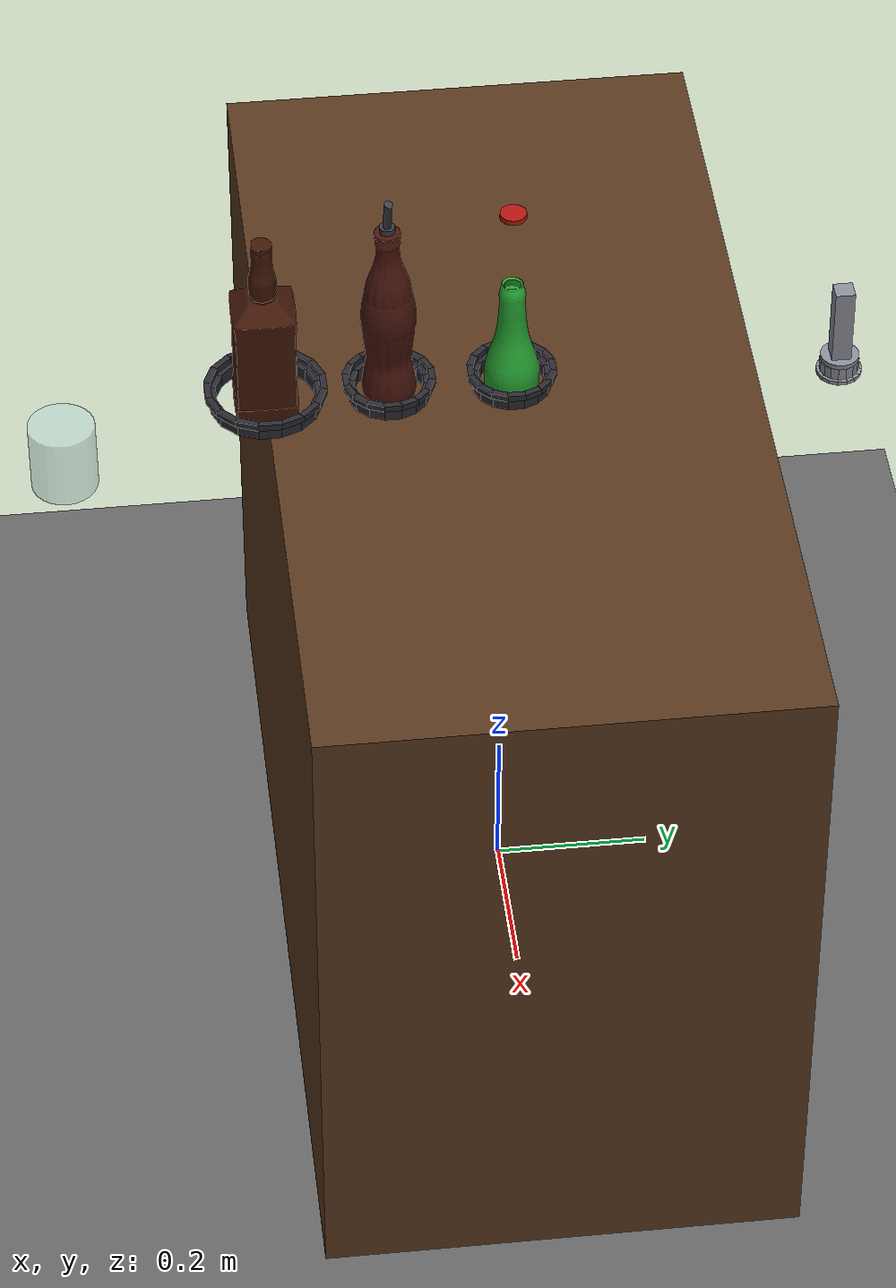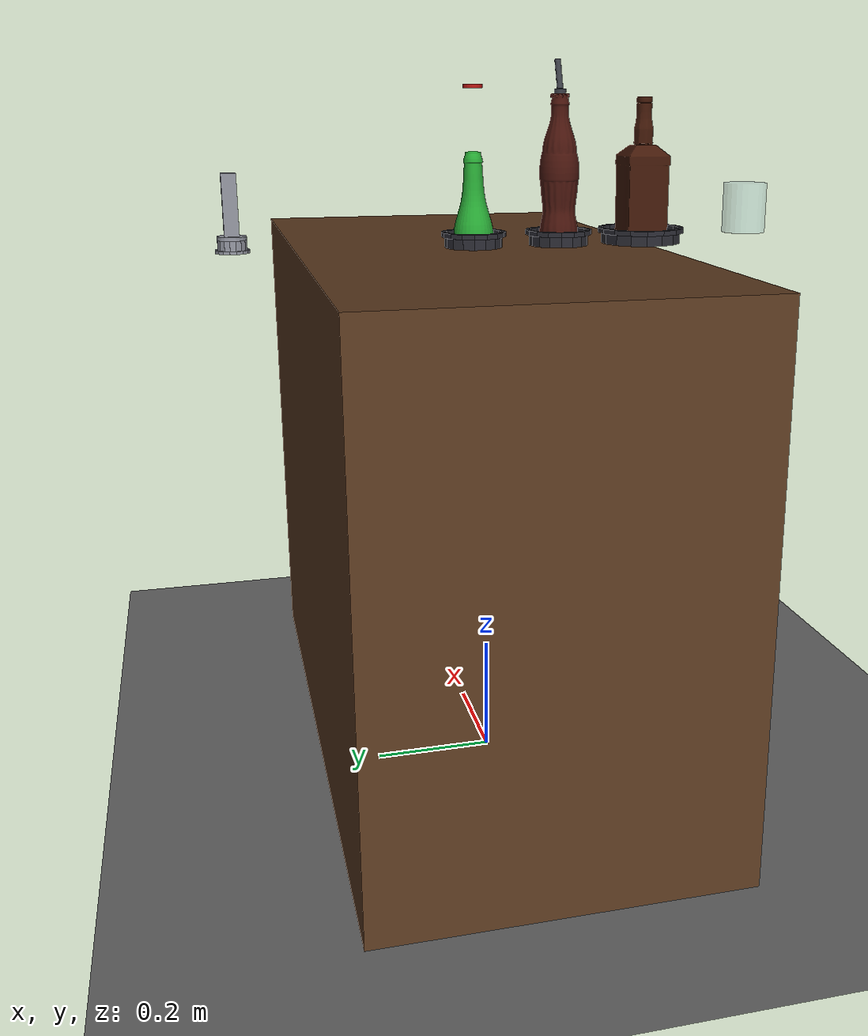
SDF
<?xml version="1.0" ?>
<sdf version="1.9">
  <world name="bar_world">
    <physics name="1ms" type="ignored">
      <max_step_size>0.001</max_step_size>
      <real_time_factor>1.0</real_time_factor>
      <dart>
        <collision_detector>bullet</collision_detector>
      </dart>
    </physics>

    <plugin filename="gz-sim-physics-system" name="gz::sim::systems::Physics"/>
    <plugin filename="gz-sim-user-commands-system" name="gz::sim::systems::UserCommands"/>
    <plugin filename="gz-sim-scene-broadcaster-system" name="gz::sim::systems::SceneBroadcaster"/>
    <plugin filename="gz-sim-sensors-system" name="gz::sim::systems::Sensors">
      <render_engine>ogre2</render_engine>
    </plugin>
    <plugin filename="gz-sim-contact-system" name="gz::sim::systems::Contact"/>

    <light type="directional" name="sun">
      <cast_shadows>true</cast_shadows>
      <pose>0 0 10 0 0 0</pose>
      <diffuse>0.8 0.8 0.8 1</diffuse>
      <specular>0.2 0.2 0.2 1</specular>
      <attenuation>
        <range>1000</range>
        <constant>0.9</constant>
        <linear>0.01</linear>
        <quadratic>0.001</quadratic>
      </attenuation>
      <direction>-0.5 0.1 -0.9</direction>
    </light>

    <model name="ground_plane">
      <static>true</static>
      <link name="link">
        <collision name="collision">
          <geometry>
            <plane>
              <normal>0 0 1</normal>
              <size>100 100</size>
            </plane>
          </geometry>
        </collision>
        <visual name="visual">
          <geometry>
            <plane>
              <normal>0 0 1</normal>
              <size>100 100</size>
            </plane>
          </geometry>
          <material>
            <ambient>0.3 0.3 0.3 1</ambient>
            <diffuse>0.4 0.4 0.4 1</diffuse>
          </material>
        </visual>
      </link>
    </model>

    <include>
      <uri>model://bar_counter</uri>
      <name>bar_counter</name>
      <pose>0.08 0 0.9 0 0 0</pose>
    </include>

    <!-- Label plugins tag objects for the segmentation cameras; the numbers are
         scripts/vlm_labels.py LABEL_IDS (test_vlm_labels.py checks they match). -->
    <include>
      <uri>model://jack_daniels_bottle</uri>
      <name>jack_daniels_bottle</name>
      <plugin filename="gz-sim-label-system" name="gz::sim::systems::Label">
        <label>1</label>
      </plugin>
      <pose>0.08 -0.30 0.9 0 0 0</pose>
    </include>

    <include>
      <uri>model://cola_bottle</uri>
      <name>cola_bottle</name>
      <plugin filename="gz-sim-label-system" name="gz::sim::systems::Label">
        <label>2</label>
      </plugin>
      <pose>0.08 -0.15 0.9 0 0 0</pose>
    </include>

    <include>
      <uri>model://whiskey_stand</uri>
      <name>whiskey_stand</name>
      <pose>0.08 -0.30 0.9 0 0 0</pose>
    </include>

    <include>
      <uri>model://cola_stand</uri>
      <name>cola_stand</name>
      <pose>0.08 -0.15 0.9 0 0 0</pose>
    </include>

    <include>
      <uri>model://beer_stand</uri>
      <name>beer_stand</name>
      <pose>0.08 0.0 0.9 0 0 0</pose>
    </include>

    <include>
      <uri>model://beer_bottle</uri>
      <name>beer_bottle</name>
      <plugin filename="gz-sim-label-system" name="gz::sim::systems::Label">
        <label>3</label>
      </plugin>
      <pose>0.08 0.0 0.9 0 0 0</pose>
    </include>

    <include>
      <uri>model://beer_cap</uri>
      <name>beer_cap</name>
      <pose>0.08 0.0 1.1581 0 0 0</pose>
    </include>

    <!-- ============== each arm's own working station ============== -->

    <include>
      <uri>model://serving_glass</uri>
      <name>serving_glass</name>
      <plugin filename="gz-sim-label-system" name="gz::sim::systems::Label">
        <label>10</label>
      </plugin>
      <pose>0.20 -0.55 0.9 0 0 0</pose>
    </include>

    <include>
      <uri>model://opener_holster</uri>
      <name>opener_holster</name>
      <pose>0.10 0.40 0.9 0 0 0</pose>
    </include>

    <include>
      <uri>model://bottle_opener</uri>
      <name>bottle_opener</name>
      <pose>0.10 0.40 0.9 0 0 0</pose>
    </include>

    <!-- Simulated OAK-D depth on a stand; its pose is restated in bartender_api/config/stand_camera.yaml. -->
    <model name="oak_d_stand">
      <static>true</static>
      <pose>0.75 0 1.35 0 0.493051 3.141593</pose>
      <link name="link">
        <sensor name="stand_depth" type="depth_camera">
          <always_on>true</always_on>
          <update_rate>15</update_rate>
          <topic>/bartender/stand_camera/depth</topic>
          <ignition_frame_id>stand_camera_optical_frame</ignition_frame_id>
          <camera>
            <camera_info_topic>/bartender/stand_camera/camera_info</camera_info_topic>
            <horizontal_fov>1.2566</horizontal_fov>
            <image>
              <width>640</width>
              <height>400</height>
              <format>R_FLOAT32</format>
            </image>
            <clip>
              <near>0.2</near>
              <far>5.0</far>
            </clip>
            <noise>
              <type>gaussian</type>
              <mean>0.0</mean>
              <stddev>0.004</stddev>
            </noise>
          </camera>
        </sensor>
        <!-- Colour twin of stand_depth: same pose, FOV and size, so pixels line up (OAK-D aligns RGB to depth). -->
        <sensor name="stand_rgb" type="camera">
          <always_on>true</always_on>
          <update_rate>15</update_rate>
          <topic>/bartender/stand_camera/rgb</topic>
          <ignition_frame_id>stand_camera_optical_frame</ignition_frame_id>
          <camera>
            <horizontal_fov>1.2566</horizontal_fov>
            <image>
              <width>640</width>
              <height>400</height>
              <format>R8G8B8</format>
            </image>
            <clip>
              <near>0.2</near>
              <far>5.0</far>
            </clip>
          </camera>
        </sensor>
        <sensor name="bartender_stand_camera_segmentation" type="segmentation">
          <always_on>true</always_on>
          <update_rate>15</update_rate>
          <topic>/bartender/stand_camera/segmentation</topic>
          <camera>
            <segmentation_type>semantic</segmentation_type>
            <horizontal_fov>1.2566</horizontal_fov>
            <image>
              <width>640</width>
              <height>400</height>
            </image>
            <clip>
              <near>0.2</near>
              <far>5.0</far>
            </clip>
          </camera>
        </sensor>
      </link>
    </model>

    <model name="overhead_camera">
      <static>true</static>
      <pose>-0.05 -0.30 2.0 0 1.5708 0</pose>
      <link name="link">
        <sensor name="overhead_rgb" type="camera">
          <always_on>true</always_on>
          <update_rate>15</update_rate>
          <topic>/bartender/overhead_camera/image_raw</topic>
          <camera>
            <horizontal_fov>1.2566</horizontal_fov>
            <image>
              <width>320</width>
              <height>240</height>
              <format>R8G8B8</format>
            </image>
            <clip>
              <near>0.2</near>
              <far>3.0</far>
            </clip>
          </camera>
        </sensor>
        <sensor name="bartender_overhead_camera_segmentation" type="segmentation">
          <always_on>true</always_on>
          <update_rate>15</update_rate>
          <topic>/bartender/overhead_camera/segmentation</topic>
          <camera>
            <segmentation_type>semantic</segmentation_type>
            <horizontal_fov>1.2566</horizontal_fov>
            <image>
              <width>320</width>
              <height>240</height>
            </image>
            <clip>
              <near>0.2</near>
              <far>3.0</far>
            </clip>
          </camera>
        </sensor>
      </link>
    </model>

  </world>
</sdf>

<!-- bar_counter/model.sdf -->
<sdf version="1.9">
  <model name="bar_counter">
    <static>true</static>
    <link name="counter_link">
      <visual name="counter_visual">
        <pose>0 0 -0.45 0 0 0</pose>
        <geometry>
          <box>
            <size>1.2 0.6 0.9</size>
          </box>
        </geometry>
        <material>
          <ambient>0.25 0.15 0.08 1</ambient>
          <diffuse>0.35 0.22 0.12 1</diffuse>
          <specular>0.2 0.2 0.2 1</specular>
        </material>
      </visual>

      <collision name="counter_collision">
        <pose>0 0 -0.45 0 0 0</pose>
        <geometry>
          <box>
            <size>1.2 0.6 0.9</size>
          </box>
        </geometry>
        <surface>
          <friction>
            <ode>
              <mu>0.8</mu>
              <mu2>0.8</mu2>
            </ode>
          </friction>
        </surface>
      </collision>
    </link>
  </model>
</sdf>

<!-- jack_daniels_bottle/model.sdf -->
<sdf version="1.9">
  <model name="jack_daniels_bottle">
    <!-- Link origin sits at the center of the bottle's base, so placing the
         model's pose z at table height puts the bottle exactly on the surface. -->
    <link name="bottle_link">
      <inertial>
        <pose>0 0 0.1225 0 0 0</pose>
        <mass>1.0</mass>
        <inertia>
          <ixx>0.005375</ixx>
          <iyy>0.005375</iyy>
          <izz>0.000745</izz>
          <ixy>0</ixy>
          <ixz>0</ixz>
          <iyz>0</iyz>
        </inertia>
      </inertial>

      <visual name="bottle_visual">
        <!-- source mesh is Y-up (Blender OBJ export); rotate +90 deg about X
             so the bottle's height axis becomes Z-up as SDF expects. -->
        <pose>0 0 0 1.570796 0 0</pose>
        <geometry>
          <mesh>
            <uri>meshes/bottle.obj</uri>
          </mesh>
        </geometry>
        <material>
          <ambient>0.05 0.02 0.01 1</ambient>
          <diffuse>0.25 0.09 0.03 1</diffuse>
          <specular>0.4 0.4 0.4 1</specular>
          <emissive>0 0 0 1</emissive>
        </material>
      </visual>

      <!-- Cheap cylinder collision instead of the 34k-face visual mesh, for
           stable, fast grasp physics. -->
      <collision name="bottle_collision">
        <pose>0 0 0.1225 0 0 0</pose>
        <geometry>
          <cylinder>
            <radius>0.0386</radius>
            <length>0.245</length>
          </cylinder>
        </geometry>
        <surface>
          <friction>
            <ode>
              <mu>0.9</mu>
              <mu2>0.9</mu2>
            </ode>
          </friction>
        </surface>
      </collision>
    </link>
  </model>
</sdf>

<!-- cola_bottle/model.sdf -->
<sdf version="1.9">
  <model name="cola_bottle">
    <!-- Link origin sits at the center of the bottle's base, same convention
         as jack_daniels_bottle, so placing the model's pose z at table height
         puts the bottle exactly on the surface. -->
    <link name="cola_link">
      <inertial>
        <pose>0 0 0.11 0 0 0</pose>
        <mass>1.05</mass>
        <inertia>
          <ixx>0.005765</ixx>
          <iyy>0.005765</iyy>
          <izz>0.000593</izz>
          <ixy>0</ixy>
          <ixz>0</ixz>
          <iyz>0</iyz>
        </inertia>
      </inertial>

      <velocity_decay>
        <linear>0.05</linear>
        <angular>0.30</angular>
      </velocity_decay>

      <visual name="cola_visual">
        <pose>0 0 0 1.570796 0 0</pose>
        <geometry>
          <mesh>
            <uri>meshes/cola_bottle.obj</uri>
            <scale>0.065074 0.065074 0.065074</scale>
          </mesh>
        </geometry>
        <material>
          <ambient>0.06 0.02 0.01 1</ambient>
          <diffuse>0.28 0.08 0.05 1</diffuse>
          <specular>0.5 0.5 0.5 1</specular>
          <emissive>0 0 0 1</emissive>
        </material>
      </visual>

      <collision name="cola_base_collision">
        <pose>0 0 0.0200 0 0 0</pose>
        <geometry>
          <cylinder>
            <radius>0.0333</radius>
            <length>0.040</length>
          </cylinder>
        </geometry>
        <surface>
          <friction>
            <ode>
              <mu>0.9</mu>
              <mu2>0.9</mu2>
            </ode>
          </friction>
        </surface>
      </collision>

      <collision name="cola_waist_collision">
        <pose>0 0 0.0600 0 0 0</pose>
        <geometry>
          <cylinder>
            <radius>0.0298</radius>
            <length>0.040</length>
          </cylinder>
        </geometry>
        <surface>
          <friction>
            <ode>
              <mu>0.9</mu>
              <mu2>0.9</mu2>
            </ode>
          </friction>
        </surface>
      </collision>

      <collision name="cola_bulge_collision">
        <pose>0 0 0.1150 0 0 0</pose>
        <geometry>
          <cylinder>
            <radius>0.0336</radius>
            <length>0.070</length>
          </cylinder>
        </geometry>
        <surface>
          <friction>
            <ode>
              <mu>0.9</mu>
              <mu2>0.9</mu2>
            </ode>
          </friction>
        </surface>
      </collision>

      <collision name="cola_shoulder_collision">
        <pose>0 0 0.1725 0 0 0</pose>
        <geometry>
          <cylinder>
            <radius>0.0250</radius>
            <length>0.045</length>
          </cylinder>
        </geometry>
        <surface>
          <friction>
            <ode>
              <mu>0.9</mu>
              <mu2>0.9</mu2>
            </ode>
          </friction>
        </surface>
      </collision>

      <collision name="cola_neck_collision">
        <pose>0 0 0.2225 0 0 0</pose>
        <geometry>
          <cylinder>
            <radius>0.0165</radius>
            <length>0.055</length>
          </cylinder>
        </geometry>
        <surface>
          <friction>
            <ode>
              <mu>0.9</mu>
              <mu2>0.9</mu2>
            </ode>
          </friction>
        </surface>
      </collision>

      <collision name="cola_collar_collision">
        <pose>0 0 0.2410 0 0 0</pose>
        <geometry>
          <cylinder>
            <radius>0.0210</radius>
            <length>0.008</length>
          </cylinder>
        </geometry>
        <surface>
          <friction>
            <ode>
              <mu>0.9</mu>
              <mu2>0.9</mu2>
            </ode>
          </friction>
        </surface>
      </collision>

      <visual name="cola_pourer_body_visual">
        <pose>0 0 0.2460 0 0 0</pose>
        <geometry><cylinder><radius>0.0095</radius><length>0.022</length></cylinder></geometry>
        <material>
          <ambient>0.05 0.05 0.06 1</ambient>
          <diffuse>0.22 0.23 0.26 1</diffuse>
          <specular>0.7 0.7 0.7 1</specular>
        </material>
      </visual>
      <visual name="cola_pourer_spout_visual">
        <pose>0.0086 0 0.2805 0 0.349066 0</pose>
        <geometry><cylinder><radius>0.005</radius><length>0.050</length></cylinder></geometry>
        <material>
          <ambient>0.05 0.05 0.06 1</ambient>
          <diffuse>0.22 0.23 0.26 1</diffuse>
          <specular>0.7 0.7 0.7 1</specular>
        </material>
      </visual>

      <collision name="cola_pourer_body_collision">
        <pose>0 0 0.2460 0 0 0</pose>
        <geometry><cylinder><radius>0.0095</radius><length>0.022</length></cylinder></geometry>
        <surface><friction><ode><mu>0.9</mu><mu2>0.9</mu2></ode></friction></surface>
      </collision>
      <collision name="cola_pourer_spout_collision">
        <pose>0.0086 0 0.2805 0 0.349066 0</pose>
        <geometry><cylinder><radius>0.005</radius><length>0.050</length></cylinder></geometry>
        <surface><friction><ode><mu>0.9</mu><mu2>0.9</mu2></ode></friction></surface>
      </collision>
    </link>
  </model>
</sdf>

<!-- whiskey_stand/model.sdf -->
<!-- GENERATED by ros2_ws/src/bartender_gazebo/scripts/make_bottle_stands.py.
     Edit that script and re-run it; edits here are overwritten. -->
<sdf version="1.9">
  <model name="whiskey_stand">
    <static>true</static>
    <link name="stand_link">
      <visual name="wall_0">
        <pose>0.064000 0.000000 0.009000 0 0 0.000000</pose>
        <geometry><box><size>0.008000 0.027052 0.018000</size></box></geometry>
        <material>
          <ambient>0.10 0.10 0.12 1</ambient>
          <diffuse>0.16 0.16 0.19 1</diffuse>
          <specular>0.05 0.05 0.05 1</specular>
        </material>
      </visual>
      <collision name="wall_collision_0">
        <pose>0.064000 0.000000 0.009000 0 0 0.000000</pose>
        <geometry><box><size>0.008000 0.027052 0.018000</size></box></geometry>
        <surface>
          <friction><ode>
            <mu>1.2</mu>
            <mu2>1.2</mu2>
          </ode></friction>
        </surface>
      </collision>
      <visual name="wall_1">
        <pose>0.059128 0.024492 0.009000 0 0 0.392699</pose>
        <geometry><box><size>0.008000 0.027052 0.018000</size></box></geometry>
        <material>
          <ambient>0.10 0.10 0.12 1</ambient>
          <diffuse>0.16 0.16 0.19 1</diffuse>
          <specular>0.05 0.05 0.05 1</specular>
        </material>
      </visual>
      <collision name="wall_collision_1">
        <pose>0.059128 0.024492 0.009000 0 0 0.392699</pose>
        <geometry><box><size>0.008000 0.027052 0.018000</size></box></geometry>
        <surface>
          <friction><ode>
            <mu>1.2</mu>
            <mu2>1.2</mu2>
          </ode></friction>
        </surface>
      </collision>
      <visual name="wall_2">
        <pose>0.045255 0.045255 0.009000 0 0 0.785398</pose>
        <geometry><box><size>0.008000 0.027052 0.018000</size></box></geometry>
        <material>
          <ambient>0.10 0.10 0.12 1</ambient>
          <diffuse>0.16 0.16 0.19 1</diffuse>
          <specular>0.05 0.05 0.05 1</specular>
        </material>
      </visual>
      <collision name="wall_collision_2">
        <pose>0.045255 0.045255 0.009000 0 0 0.785398</pose>
        <geometry><box><size>0.008000 0.027052 0.018000</size></box></geometry>
        <surface>
          <friction><ode>
            <mu>1.2</mu>
            <mu2>1.2</mu2>
          </ode></friction>
        </surface>
      </collision>
      <visual name="wall_3">
        <pose>0.024492 0.059128 0.009000 0 0 1.178097</pose>
        <geometry><box><size>0.008000 0.027052 0.018000</size></box></geometry>
        <material>
          <ambient>0.10 0.10 0.12 1</ambient>
          <diffuse>0.16 0.16 0.19 1</diffuse>
          <specular>0.05 0.05 0.05 1</specular>
        </material>
      </visual>
      <collision name="wall_collision_3">
        <pose>0.024492 0.059128 0.009000 0 0 1.178097</pose>
        <geometry><box><size>0.008000 0.027052 0.018000</size></box></geometry>
        <surface>
          <friction><ode>
            <mu>1.2</mu>
            <mu2>1.2</mu2>
          </ode></friction>
        </surface>
      </collision>
      <visual name="wall_4">
        <pose>0.000000 0.064000 0.009000 0 0 1.570796</pose>
        <geometry><box><size>0.008000 0.027052 0.018000</size></box></geometry>
        <material>
          <ambient>0.10 0.10 0.12 1</ambient>
          <diffuse>0.16 0.16 0.19 1</diffuse>
          <specular>0.05 0.05 0.05 1</specular>
        </material>
      </visual>
      <collision name="wall_collision_4">
        <pose>0.000000 0.064000 0.009000 0 0 1.570796</pose>
        <geometry><box><size>0.008000 0.027052 0.018000</size></box></geometry>
        <surface>
          <friction><ode>
            <mu>1.2</mu>
            <mu2>1.2</mu2>
          </ode></friction>
        </surface>
      </collision>
      <visual name="wall_5">
        <pose>-0.024492 0.059128 0.009000 0 0 1.963495</pose>
        <geometry><box><size>0.008000 0.027052 0.018000</size></box></geometry>
        <material>
          <ambient>0.10 0.10 0.12 1</ambient>
          <diffuse>0.16 0.16 0.19 1</diffuse>
          <specular>0.05 0.05 0.05 1</specular>
        </material>
      </visual>
      <collision name="wall_collision_5">
        <pose>-0.024492 0.059128 0.009000 0 0 1.963495</pose>
        <geometry><box><size>0.008000 0.027052 0.018000</size></box></geometry>
        <surface>
          <friction><ode>
            <mu>1.2</mu>
            <mu2>1.2</mu2>
          </ode></friction>
        </surface>
      </collision>
      <visual name="wall_6">
        <pose>-0.045255 0.045255 0.009000 0 0 2.356194</pose>
        <geometry><box><size>0.008000 0.027052 0.018000</size></box></geometry>
        <material>
          <ambient>0.10 0.10 0.12 1</ambient>
          <diffuse>0.16 0.16 0.19 1</diffuse>
          <specular>0.05 0.05 0.05 1</specular>
        </material>
      </visual>
      <collision name="wall_collision_6">
        <pose>-0.045255 0.045255 0.009000 0 0 2.356194</pose>
        <geometry><box><size>0.008000 0.027052 0.018000</size></box></geometry>
        <surface>
          <friction><ode>
            <mu>1.2</mu>
            <mu2>1.2</mu2>
          </ode></friction>
        </surface>
      </collision>
      <visual name="wall_7">
        <pose>-0.059128 0.024492 0.009000 0 0 2.748894</pose>
        <geometry><box><size>0.008000 0.027052 0.018000</size></box></geometry>
        <material>
          <ambient>0.10 0.10 0.12 1</ambient>
          <diffuse>0.16 0.16 0.19 1</diffuse>
          <specular>0.05 0.05 0.05 1</specular>
        </material>
      </visual>
      <collision name="wall_collision_7">
        <pose>-0.059128 0.024492 0.009000 0 0 2.748894</pose>
        <geometry><box><size>0.008000 0.027052 0.018000</size></box></geometry>
        <surface>
          <friction><ode>
            <mu>1.2</mu>
            <mu2>1.2</mu2>
          </ode></friction>
        </surface>
      </collision>
      <visual name="wall_8">
        <pose>-0.064000 0.000000 0.009000 0 0 3.141593</pose>
        <geometry><box><size>0.008000 0.027052 0.018000</size></box></geometry>
        <material>
          <ambient>0.10 0.10 0.12 1</ambient>
          <diffuse>0.16 0.16 0.19 1</diffuse>
          <specular>0.05 0.05 0.05 1</specular>
        </material>
      </visual>
      <collision name="wall_collision_8">
        <pose>-0.064000 0.000000 0.009000 0 0 3.141593</pose>
        <geometry><box><size>0.008000 0.027052 0.018000</size></box></geometry>
        <surface>
          <friction><ode>
            <mu>1.2</mu>
            <mu2>1.2</mu2>
          </ode></friction>
        </surface>
      </collision>
      <visual name="wall_9">
        <pose>-0.059128 -0.024492 0.009000 0 0 3.534292</pose>
        <geometry><box><size>0.008000 0.027052 0.018000</size></box></geometry>
        <material>
          <ambient>0.10 0.10 0.12 1</ambient>
          <diffuse>0.16 0.16 0.19 1</diffuse>
          <specular>0.05 0.05 0.05 1</specular>
        </material>
      </visual>
      <collision name="wall_collision_9">
        <pose>-0.059128 -0.024492 0.009000 0 0 3.534292</pose>
        <geometry><box><size>0.008000 0.027052 0.018000</size></box></geometry>
        <surface>
          <friction><ode>
            <mu>1.2</mu>
            <mu2>1.2</mu2>
          </ode></friction>
        </surface>
      </collision>
      <visual name="wall_10">
        <pose>-0.045255 -0.045255 0.009000 0 0 3.926991</pose>
        <geometry><box><size>0.008000 0.027052 0.018000</size></box></geometry>
        <material>
          <ambient>0.10 0.10 0.12 1</ambient>
          <diffuse>0.16 0.16 0.19 1</diffuse>
          <specular>0.05 0.05 0.05 1</specular>
        </material>
      </visual>
      <collision name="wall_collision_10">
        <pose>-0.045255 -0.045255 0.009000 0 0 3.926991</pose>
        <geometry><box><size>0.008000 0.027052 0.018000</size></box></geometry>
        <surface>
          <friction><ode>
            <mu>1.2</mu>
            <mu2>1.2</mu2>
          </ode></friction>
        </surface>
      </collision>
      <visual name="wall_11">
        <pose>-0.024492 -0.059128 0.009000 0 0 4.319690</pose>
        <geometry><box><size>0.008000 0.027052 0.018000</size></box></geometry>
        <material>
          <ambient>0.10 0.10 0.12 1</ambient>
          <diffuse>0.16 0.16 0.19 1</diffuse>
          <specular>0.05 0.05 0.05 1</specular>
        </material>
      </visual>
      <collision name="wall_collision_11">
        <pose>-0.024492 -0.059128 0.009000 0 0 4.319690</pose>
        <geometry><box><size>0.008000 0.027052 0.018000</size></box></geometry>
        <surface>
          <friction><ode>
            <mu>1.2</mu>
            <mu2>1.2</mu2>
          </ode></friction>
        </surface>
      </collision>
      <visual name="wall_12">
        <pose>-0.000000 -0.064000 0.009000 0 0 4.712389</pose>
        <geometry><box><size>0.008000 0.027052 0.018000</size></box></geometry>
        <material>
          <ambient>0.10 0.10 0.12 1</ambient>
          <diffuse>0.16 0.16 0.19 1</diffuse>
          <specular>0.05 0.05 0.05 1</specular>
        </material>
      </visual>
      <collision name="wall_collision_12">
        <pose>-0.000000 -0.064000 0.009000 0 0 4.712389</pose>
        <geometry><box><size>0.008000 0.027052 0.018000</size></box></geometry>
        <surface>
          <friction><ode>
            <mu>1.2</mu>
            <mu2>1.2</mu2>
          </ode></friction>
        </surface>
      </collision>
      <visual name="wall_13">
        <pose>0.024492 -0.059128 0.009000 0 0 5.105088</pose>
        <geometry><box><size>0.008000 0.027052 0.018000</size></box></geometry>
        <material>
          <ambient>0.10 0.10 0.12 1</ambient>
          <diffuse>0.16 0.16 0.19 1</diffuse>
          <specular>0.05 0.05 0.05 1</specular>
        </material>
      </visual>
      <collision name="wall_collision_13">
        <pose>0.024492 -0.059128 0.009000 0 0 5.105088</pose>
        <geometry><box><size>0.008000 0.027052 0.018000</size></box></geometry>
        <surface>
          <friction><ode>
            <mu>1.2</mu>
            <mu2>1.2</mu2>
          </ode></friction>
        </surface>
      </collision>
      <visual name="wall_14">
        <pose>0.045255 -0.045255 0.009000 0 0 5.497787</pose>
        <geometry><box><size>0.008000 0.027052 0.018000</size></box></geometry>
        <material>
          <ambient>0.10 0.10 0.12 1</ambient>
          <diffuse>0.16 0.16 0.19 1</diffuse>
          <specular>0.05 0.05 0.05 1</specular>
        </material>
      </visual>
      <collision name="wall_collision_14">
        <pose>0.045255 -0.045255 0.009000 0 0 5.497787</pose>
        <geometry><box><size>0.008000 0.027052 0.018000</size></box></geometry>
        <surface>
          <friction><ode>
            <mu>1.2</mu>
            <mu2>1.2</mu2>
          </ode></friction>
        </surface>
      </collision>
      <visual name="wall_15">
        <pose>0.059128 -0.024492 0.009000 0 0 5.890486</pose>
        <geometry><box><size>0.008000 0.027052 0.018000</size></box></geometry>
        <material>
          <ambient>0.10 0.10 0.12 1</ambient>
          <diffuse>0.16 0.16 0.19 1</diffuse>
          <specular>0.05 0.05 0.05 1</specular>
        </material>
      </visual>
      <collision name="wall_collision_15">
        <pose>0.059128 -0.024492 0.009000 0 0 5.890486</pose>
        <geometry><box><size>0.008000 0.027052 0.018000</size></box></geometry>
        <surface>
          <friction><ode>
            <mu>1.2</mu>
            <mu2>1.2</mu2>
          </ode></friction>
        </surface>
      </collision>
      <visual name="wall_16">
        <pose>0.070000 0.000000 0.022000 0 0 0.000000</pose>
        <geometry><box><size>0.008000 0.029439 0.008000</size></box></geometry>
        <material>
          <ambient>0.10 0.10 0.12 1</ambient>
          <diffuse>0.16 0.16 0.19 1</diffuse>
          <specular>0.05 0.05 0.05 1</specular>
        </material>
      </visual>
      <collision name="wall_collision_16">
        <pose>0.070000 0.000000 0.022000 0 0 0.000000</pose>
        <geometry><box><size>0.008000 0.029439 0.008000</size></box></geometry>
        <surface>
          <friction><ode>
            <mu>1.2</mu>
            <mu2>1.2</mu2>
          </ode></friction>
        </surface>
      </collision>
      <visual name="wall_17">
        <pose>0.064672 0.026788 0.022000 0 0 0.392699</pose>
        <geometry><box><size>0.008000 0.029439 0.008000</size></box></geometry>
        <material>
          <ambient>0.10 0.10 0.12 1</ambient>
          <diffuse>0.16 0.16 0.19 1</diffuse>
          <specular>0.05 0.05 0.05 1</specular>
        </material>
      </visual>
      <collision name="wall_collision_17">
        <pose>0.064672 0.026788 0.022000 0 0 0.392699</pose>
        <geometry><box><size>0.008000 0.029439 0.008000</size></box></geometry>
        <surface>
          <friction><ode>
            <mu>1.2</mu>
            <mu2>1.2</mu2>
          </ode></friction>
        </surface>
      </collision>
      <visual name="wall_18">
        <pose>0.049497 0.049497 0.022000 0 0 0.785398</pose>
        <geometry><box><size>0.008000 0.029439 0.008000</size></box></geometry>
        <material>
          <ambient>0.10 0.10 0.12 1</ambient>
          <diffuse>0.16 0.16 0.19 1</diffuse>
          <specular>0.05 0.05 0.05 1</specular>
        </material>
      </visual>
      <collision name="wall_collision_18">
        <pose>0.049497 0.049497 0.022000 0 0 0.785398</pose>
        <geometry><box><size>0.008000 0.029439 0.008000</size></box></geometry>
        <surface>
          <friction><ode>
            <mu>1.2</mu>
            <mu2>1.2</mu2>
          </ode></friction>
        </surface>
      </collision>
      <visual name="wall_19">
        <pose>0.026788 0.064672 0.022000 0 0 1.178097</pose>
        <geometry><box><size>0.008000 0.029439 0.008000</size></box></geometry>
        <material>
          <ambient>0.10 0.10 0.12 1</ambient>
          <diffuse>0.16 0.16 0.19 1</diffuse>
          <specular>0.05 0.05 0.05 1</specular>
        </material>
      </visual>
      <collision name="wall_collision_19">
        <pose>0.026788 0.064672 0.022000 0 0 1.178097</pose>
        <geometry><box><size>0.008000 0.029439 0.008000</size></box></geometry>
        <surface>
          <friction><ode>
            <mu>1.2</mu>
            <mu2>1.2</mu2>
          </ode></friction>
        </surface>
      </collision>
      <visual name="wall_20">
        <pose>0.000000 0.070000 0.022000 0 0 1.570796</pose>
        <geometry><box><size>0.008000 0.029439 0.008000</size></box></geometry>
        <material>
          <ambient>0.10 0.10 0.12 1</ambient>
          <diffuse>0.16 0.16 0.19 1</diffuse>
          <specular>0.05 0.05 0.05 1</specular>
        </material>
      </visual>
      <collision name="wall_collision_20">
        <pose>0.000000 0.070000 0.022000 0 0 1.570796</pose>
        <geometry><box><size>0.008000 0.029439 0.008000</size></box></geometry>
        <surface>
          <friction><ode>
            <mu>1.2</mu>
            <mu2>1.2</mu2>
          </ode></friction>
        </surface>
      </collision>
      <visual name="wall_21">
        <pose>-0.026788 0.064672 0.022000 0 0 1.963495</pose>
        <geometry><box><size>0.008000 0.029439 0.008000</size></box></geometry>
        <material>
          <ambient>0.10 0.10 0.12 1</ambient>
          <diffuse>0.16 0.16 0.19 1</diffuse>
          <specular>0.05 0.05 0.05 1</specular>
        </material>
      </visual>
      <collision name="wall_collision_21">
        <pose>-0.026788 0.064672 0.022000 0 0 1.963495</pose>
        <geometry><box><size>0.008000 0.029439 0.008000</size></box></geometry>
        <surface>
          <friction><ode>
            <mu>1.2</mu>
            <mu2>1.2</mu2>
          </ode></friction>
        </surface>
      </collision>
      <visual name="wall_22">
        <pose>-0.049497 0.049497 0.022000 0 0 2.356194</pose>
        <geometry><box><size>0.008000 0.029439 0.008000</size></box></geometry>
        <material>
          <ambient>0.10 0.10 0.12 1</ambient>
          <diffuse>0.16 0.16 0.19 1</diffuse>
          <specular>0.05 0.05 0.05 1</specular>
        </material>
      </visual>
      <collision name="wall_collision_22">
        <pose>-0.049497 0.049497 0.022000 0 0 2.356194</pose>
        <geometry><box><size>0.008000 0.029439 0.008000</size></box></geometry>
        <surface>
          <friction><ode>
            <mu>1.2</mu>
            <mu2>1.2</mu2>
          </ode></friction>
        </surface>
      </collision>
      <visual name="wall_23">
        <pose>-0.064672 0.026788 0.022000 0 0 2.748894</pose>
        <geometry><box><size>0.008000 0.029439 0.008000</size></box></geometry>
        <material>
          <ambient>0.10 0.10 0.12 1</ambient>
          <diffuse>0.16 0.16 0.19 1</diffuse>
          <specular>0.05 0.05 0.05 1</specular>
        </material>
      </visual>
      <collision name="wall_collision_23">
        <pose>-0.064672 0.026788 0.022000 0 0 2.748894</pose>
        <geometry><box><size>0.008000 0.029439 0.008000</size></box></geometry>
        <surface>
          <friction><ode>
            <mu>1.2</mu>
            <mu2>1.2</mu2>
          </ode></friction>
        </surface>
      </collision>
      <visual name="wall_24">
        <pose>-0.070000 0.000000 0.022000 0 0 3.141593</pose>
        <geometry><box><size>0.008000 0.029439 0.008000</size></box></geometry>
        <material>
          <ambient>0.10 0.10 0.12 1</ambient>
          <diffuse>0.16 0.16 0.19 1</diffuse>
          <specular>0.05 0.05 0.05 1</specular>
        </material>
      </visual>
      <collision name="wall_collision_24">
        <pose>-0.070000 0.000000 0.022000 0 0 3.141593</pose>
        <geometry><box><size>0.008000 0.029439 0.008000</size></box></geometry>
        <surface>
          <friction><ode>
            <mu>1.2</mu>
            <mu2>1.2</mu2>
          </ode></friction>
        </surface>
      </collision>
      <visual name="wall_25">
        <pose>-0.064672 -0.026788 0.022000 0 0 3.534292</pose>
        <geometry><box><size>0.008000 0.029439 0.008000</size></box></geometry>
        <material>
          <ambient>0.10 0.10 0.12 1</ambient>
          <diffuse>0.16 0.16 0.19 1</diffuse>
          <specular>0.05 0.05 0.05 1</specular>
        </material>
      </visual>
      <collision name="wall_collision_25">
        <pose>-0.064672 -0.026788 0.022000 0 0 3.534292</pose>
        <geometry><box><size>0.008000 0.029439 0.008000</size></box></geometry>
        <surface>
          <friction><ode>
            <mu>1.2</mu>
            <mu2>1.2</mu2>
          </ode></friction>
        </surface>
      </collision>
      <visual name="wall_26">
        <pose>-0.049497 -0.049497 0.022000 0 0 3.926991</pose>
        <geometry><box><size>0.008000 0.029439 0.008000</size></box></geometry>
        <material>
          <ambient>0.10 0.10 0.12 1</ambient>
          <diffuse>0.16 0.16 0.19 1</diffuse>
          <specular>0.05 0.05 0.05 1</specular>
        </material>
      </visual>
      <collision name="wall_collision_26">
        <pose>-0.049497 -0.049497 0.022000 0 0 3.926991</pose>
        <geometry><box><size>0.008000 0.029439 0.008000</size></box></geometry>
        <surface>
          <friction><ode>
            <mu>1.2</mu>
            <mu2>1.2</mu2>
          </ode></friction>
        </surface>
      </collision>
      <visual name="wall_27">
        <pose>-0.026788 -0.064672 0.022000 0 0 4.319690</pose>
        <geometry><box><size>0.008000 0.029439 0.008000</size></box></geometry>
        <material>
          <ambient>0.10 0.10 0.12 1</ambient>
          <diffuse>0.16 0.16 0.19 1</diffuse>
          <specular>0.05 0.05 0.05 1</specular>
        </material>
      </visual>
      <collision name="wall_collision_27">
        <pose>-0.026788 -0.064672 0.022000 0 0 4.319690</pose>
        <geometry><box><size>0.008000 0.029439 0.008000</size></box></geometry>
        <surface>
          <friction><ode>
            <mu>1.2</mu>
            <mu2>1.2</mu2>
          </ode></friction>
        </surface>
      </collision>
      <visual name="wall_28">
        <pose>-0.000000 -0.070000 0.022000 0 0 4.712389</pose>
        <geometry><box><size>0.008000 0.029439 0.008000</size></box></geometry>
        <material>
          <ambient>0.10 0.10 0.12 1</ambient>
          <diffuse>0.16 0.16 0.19 1</diffuse>
          <specular>0.05 0.05 0.05 1</specular>
        </material>
      </visual>
      <collision name="wall_collision_28">
        <pose>-0.000000 -0.070000 0.022000 0 0 4.712389</pose>
        <geometry><box><size>0.008000 0.029439 0.008000</size></box></geometry>
        <surface>
          <friction><ode>
            <mu>1.2</mu>
            <mu2>1.2</mu2>
          </ode></friction>
        </surface>
      </collision>
      <visual name="wall_29">
        <pose>0.026788 -0.064672 0.022000 0 0 5.105088</pose>
        <geometry><box><size>0.008000 0.029439 0.008000</size></box></geometry>
        <material>
          <ambient>0.10 0.10 0.12 1</ambient>
          <diffuse>0.16 0.16 0.19 1</diffuse>
          <specular>0.05 0.05 0.05 1</specular>
        </material>
      </visual>
      <collision name="wall_collision_29">
        <pose>0.026788 -0.064672 0.022000 0 0 5.105088</pose>
        <geometry><box><size>0.008000 0.029439 0.008000</size></box></geometry>
        <surface>
          <friction><ode>
            <mu>1.2</mu>
            <mu2>1.2</mu2>
          </ode></friction>
        </surface>
      </collision>
      <visual name="wall_30">
        <pose>0.049497 -0.049497 0.022000 0 0 5.497787</pose>
        <geometry><box><size>0.008000 0.029439 0.008000</size></box></geometry>
        <material>
          <ambient>0.10 0.10 0.12 1</ambient>
          <diffuse>0.16 0.16 0.19 1</diffuse>
          <specular>0.05 0.05 0.05 1</specular>
        </material>
      </visual>
      <collision name="wall_collision_30">
        <pose>0.049497 -0.049497 0.022000 0 0 5.497787</pose>
        <geometry><box><size>0.008000 0.029439 0.008000</size></box></geometry>
        <surface>
          <friction><ode>
            <mu>1.2</mu>
            <mu2>1.2</mu2>
          </ode></friction>
        </surface>
      </collision>
      <visual name="wall_31">
        <pose>0.064672 -0.026788 0.022000 0 0 5.890486</pose>
        <geometry><box><size>0.008000 0.029439 0.008000</size></box></geometry>
        <material>
          <ambient>0.10 0.10 0.12 1</ambient>
          <diffuse>0.16 0.16 0.19 1</diffuse>
          <specular>0.05 0.05 0.05 1</specular>
        </material>
      </visual>
      <collision name="wall_collision_31">
        <pose>0.064672 -0.026788 0.022000 0 0 5.890486</pose>
        <geometry><box><size>0.008000 0.029439 0.008000</size></box></geometry>
        <surface>
          <friction><ode>
            <mu>1.2</mu>
            <mu2>1.2</mu2>
          </ode></friction>
        </surface>
      </collision>
    </link>
  </model>
</sdf>

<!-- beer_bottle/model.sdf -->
<sdf version='1.7'>
  <model name='beer_bottle'>

    <link name='link'>
      <inertial>
        <mass>0.005</mass>
        <inertia>
          <ixx>0.1636</ixx>
          <ixy>0.0</ixy>
          <ixz>0.0</ixz>
          <iyy>0.1636</iyy>
          <iyz>0.0</iyz>
          <izz>0.1636</izz>
        </inertia>
      </inertial>
      <pose>0 0 0 0 -0 0</pose>
      <visual name='visual'>
        <pose>0 0 0 0 -0 0</pose>
        <geometry>
          <mesh>
            <uri>model://beer_bottle/meshes/beer_bottle.obj</uri>
            <scale>1 1 1</scale>
          </mesh>
        </geometry>
        <material>
          <lighting>1</lighting>
          <script>
            <uri>file://media/materials/scripts/gazebo.material</uri>
            <name>Gazebo/Green</name>
          </script>
        </material>
        <transparency>0.1</transparency>
        <cast_shadows>1</cast_shadows>
      </visual>
      <collision name="base_collision">
        <pose>0 0 0 0 0 0</pose>
        <geometry>
          <mesh>
            <uri>model://beer_bottle/meshes/beer_bottle.obj</uri>
            <scale>1 1 1</scale>
          </mesh>
        </geometry>
      </collision>
    </link>
    <static>0</static>
    <allow_auto_disable>1</allow_auto_disable>
    <plugin name="BuoyancyPlugin" filename="libbuoyancy_gazebo_plugin.so">
      <wave_model>ocean_waves</wave_model>
      <fluid_density>5</fluid_density>
      <fluid_level>0</fluid_level>
      <linear_drag>10</linear_drag>
      <angular_drag>10</angular_drag>
      <buoyancy name="buoyancy_base">
        <link_name>link</link_name>
        <pose>0 0 0 0 0 0</pose>
        <geometry>
          <box>
            <size>0.06773 0.06773 0.254998</size>
          </box>
        </geometry>
      </buoyancy>
    </plugin>
  </model>
</sdf>

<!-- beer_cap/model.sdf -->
<!-- GENERATED by ros2_ws/src/bartender_gazebo/scripts/make_beer_and_opener.py.
     Edit that script and re-run it; edits here are overwritten. -->
<sdf version="1.9">
  <model name="beer_cap">
    <link name="cap_link">
      <inertial>
        <pose>0 0 0.003250 0 0 0</pose>
        <mass>0.0022</mass>
        <inertia>
          <ixx>0.000000150</ixx>
          <iyy>0.000000150</iyy>
          <izz>0.000000285</izz>
          <ixy>0</ixy><ixz>0</ixz><iyz>0</iyz>
        </inertia>
      </inertial>

      <visual name="cap_visual">
        <pose>0 0 0.003250 0 0 0</pose>
        <geometry><cylinder><radius>0.016100</radius>
          <length>0.006500</length></cylinder></geometry>
        <material>
          <ambient>0.20 0.02 0.02 1</ambient>
          <diffuse>0.70 0.08 0.06 1</diffuse>
          <specular>0.8 0.8 0.8 1</specular>
        </material>
      </visual>

      <collision name="cap_collision">
        <pose>0 0 0.003250 0 0 0</pose>
        <geometry><cylinder><radius>0.016100</radius>
          <length>0.006500</length></cylinder></geometry>
        <surface><friction><ode><mu>0.9</mu><mu2>0.9</mu2></ode></friction></surface>
      </collision>
    </link>
  </model>
</sdf>

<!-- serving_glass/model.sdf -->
<sdf version="1.9">
  <model name="serving_glass">
    <!-- Link origin is the center of the glass's base. -->
    <link name="glass_link">
      <inertial>
        <pose>0 0 0.045 0 0 0</pose>
        <mass>0.3</mass>
        <inertia>
          <ixx>0.0003225</ixx>
          <iyy>0.0003225</iyy>
          <izz>0.00024</izz>
          <ixy>0</ixy>
          <ixz>0</ixz>
          <iyz>0</iyz>
        </inertia>
      </inertial>

      <visual name="glass_visual">
        <pose>0 0 0.045 0 0 0</pose>
        <geometry>
          <cylinder>
            <radius>0.04</radius>
            <length>0.09</length>
          </cylinder>
        </geometry>
        <material>
          <ambient>0.6 0.7 0.7 0.4</ambient>
          <diffuse>0.7 0.85 0.85 0.4</diffuse>
          <specular>0.9 0.9 0.9 0.6</specular>
        </material>
      </visual>

      <collision name="glass_collision">
        <pose>0 0 0.045 0 0 0</pose>
        <geometry>
          <cylinder>
            <radius>0.04</radius>
            <length>0.09</length>
          </cylinder>
        </geometry>
        <surface>
          <friction>
            <ode>
              <mu>0.7</mu>
              <mu2>0.7</mu2>
            </ode>
          </friction>
        </surface>
      </collision>
    </link>
  </model>
</sdf>

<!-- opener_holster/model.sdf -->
<!-- GENERATED by ros2_ws/src/bartender_gazebo/scripts/make_beer_and_opener.py.
     Edit that script and re-run it; edits here are overwritten. -->
<sdf version="1.9">
  <model name="opener_holster">
    <static>true</static>
    <link name="holster_link">

      <collision name="post_collision">
        <pose>0 0 0.005000 0 0 0</pose>
        <geometry><cylinder><radius>0.016100</radius>
          <length>0.010000</length></cylinder></geometry>
        <surface><friction><ode><mu>1.2</mu><mu2>1.2</mu2></ode></friction></surface>
      </collision>

      <collision name="post_lead_collision">
        <pose>0 0 0.012000 0 0 0</pose>
        <geometry><cylinder><radius>0.013500</radius>
          <length>0.004000</length></cylinder></geometry>
        <surface><friction><ode><mu>1.2</mu><mu2>1.2</mu2></ode></friction></surface>
      </collision>
      <visual name="post">
        <pose>0 0 0.005000 0 0 0</pose>
        <geometry><cylinder><radius>0.016100</radius>
          <length>0.010000</length></cylinder></geometry>
        <material>
          <ambient>0.10 0.10 0.12 1</ambient>
          <diffuse>0.16 0.16 0.19 1</diffuse>
        </material>
      </visual>
      <visual name="post_lead">
        <pose>0 0 0.012000 0 0 0</pose>
        <geometry><cylinder><radius>0.013500</radius>
          <length>0.004000</length></cylinder></geometry>
        <material>
          <ambient>0.10 0.10 0.12 1</ambient>
          <diffuse>0.16 0.16 0.19 1</diffuse>
        </material>
      </visual>
    </link>
  </model>
</sdf>
